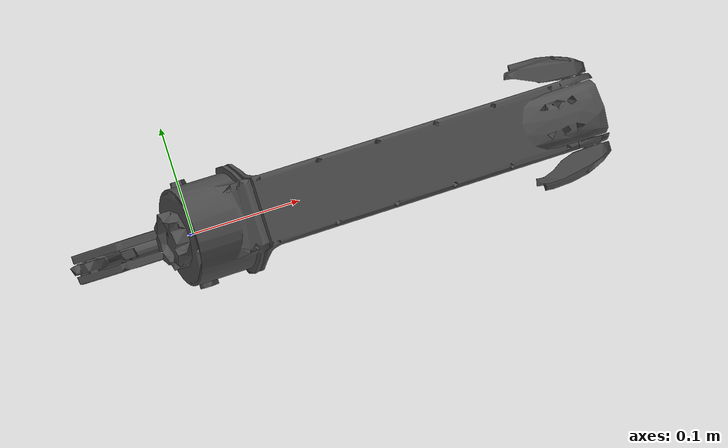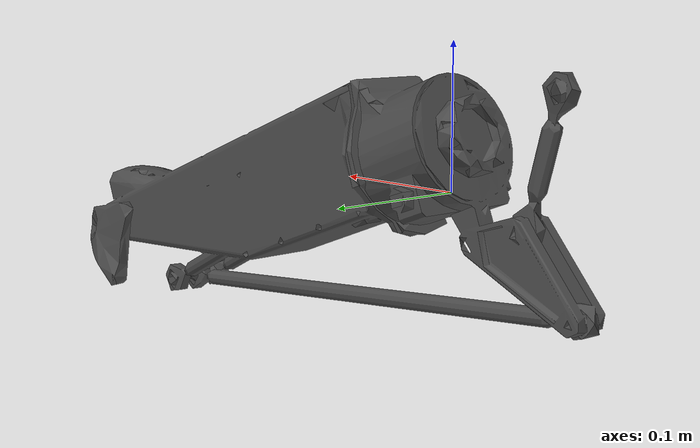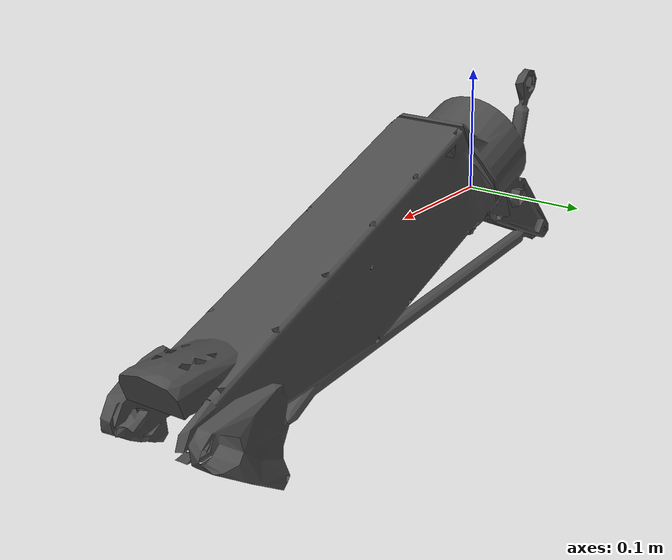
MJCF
<mujoco model="leg_4_collision_link">
  <default>
    <default class="visual">
      <geom group="2" type="mesh" contype="0" conaffinity="0"/>
    </default>
    <default class="collision">
      <geom group="3" type="mesh"/>
    </default>
  </default>
  <asset>
    <material name="mtl_leg_4_collision_link" specular="0.20000000000000004" shininess="1.0" rgba="0.29803922 0.29803922 0.29803922 1.0"/>
    <mesh file="leg_4_collision_link.obj"/>
  </asset>
  <worldbody>
    <body name="leg_4_collision_link">
      <geom material="mtl_leg_4_collision_link" mesh="leg_4_collision_link" class="visual"/>
      <geom mesh="leg_4_collision_link" class="collision"/>
    </body>
  </worldbody>
</mujoco>
